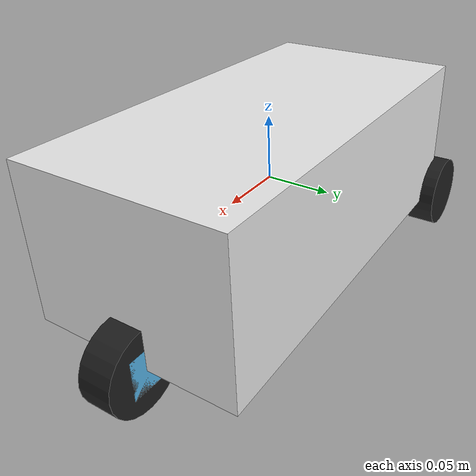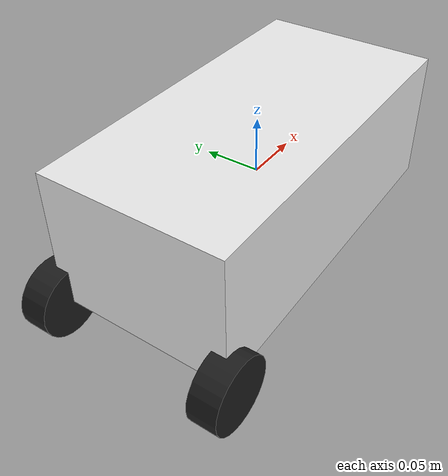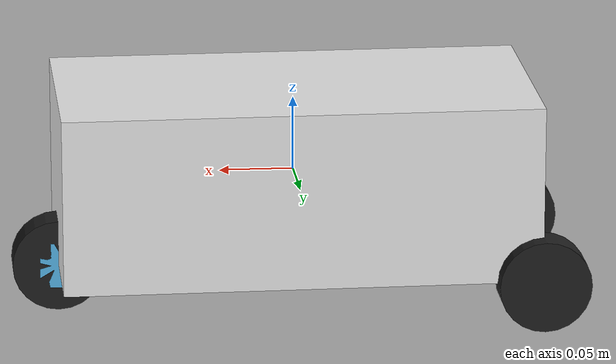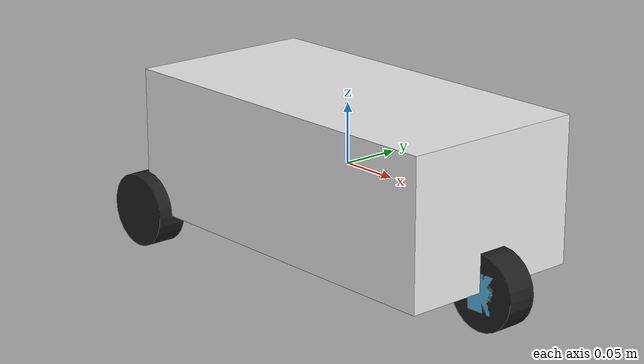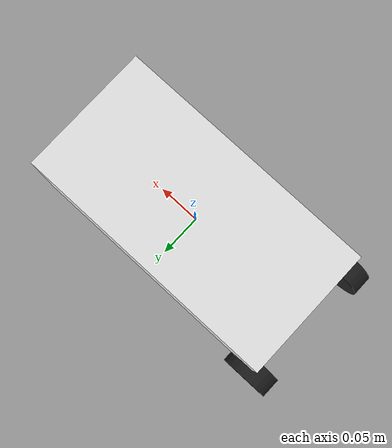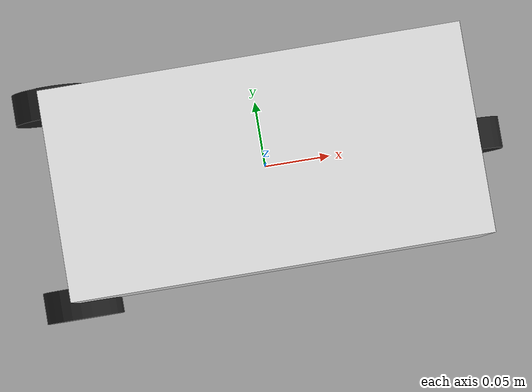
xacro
<?xml version="1.0"?>
<robot xmlns:xacro="http://www.ros.org/wiki/xacro" name="f1tenth">

  <xacro:include filename="gazebo.xacro"/>
  <xacro:include filename="inertial_macros.xacro"/>

  <!-- Chassis Link -->
  <link name="chassis">
    <visual>
      <geometry>
        <box size="0.32 0.16 0.12"/>
      </geometry>
    </visual>
    <collision>
      <geometry>
        <box size="0.32 0.16 0.12"/>
      </geometry>
    </collision>
    <xacro:inertial_box mass="1.98" x="0.32" y="0.16" z="0.12">
      <origin xyz="0.0 0.0 0.0" rpy="0 0 0"/>
    </xacro:inertial_box>
  </link>

  <!-- Steer Link -->
  <link name="steer_link">
    <visual>
      <geometry>
        <box size="0.025 0.025 0.031"/>
      </geometry>
    </visual>
    <collision>
      <geometry>
        <box size="0.025 0.025 0.031"/>
      </geometry>
    </collision>
    <xacro:inertial_box mass="0.02" x="0.025" y="0.025" z="0.031">
      <origin xyz="0.0 0.0 -0.0155" rpy="0 0 0"/>
    </xacro:inertial_box>
  </link>

  <!-- Steer Joint (connects chassis to steer_link) -->
  <joint name="steer_joint" type="revolute">
    <parent link="chassis"/>
    <child link="steer_link"/>
    <origin xyz="0.16 0.0 -0.06" rpy="0 0 0"/>
    <axis xyz="0 0 1"/>
    <limit lower="-0.698" upper="0.698" effort="10.0" velocity="3.0"/>
  </joint>

  <!-- Front Wheel -->
  <link name="front_wheel">
    <visual>
      <origin xyz="0 0 0" rpy="${pi/2} 0 0"/>
      <geometry>
        <cylinder radius="0.031" length="0.025"/>
      </geometry>
    </visual>
    <collision>
      <origin xyz="0 0 0" rpy="${pi/2} 0 0"/>
      <geometry>
        <cylinder radius="0.031" length="0.025"/>
      </geometry>
    </collision>
    <xacro:inertial_cylinder mass="0.02" length="0.025" radius="0.031">
      <origin xyz="0.0 0.0 0.0" rpy="0 0 0"/>
    </xacro:inertial_cylinder>
  </link>

  <!-- Front Wheel Joint (connects steer_link to front_wheel) -->
  <joint name="front_wheel_joint" type="continuous">
    <parent link="steer_link"/>
    <child link="front_wheel"/>
    <origin xyz="0 0 0.0" rpy="0 0 0"/>
    <axis xyz="0 1 0"/>
  </joint>

  <!-- Rear Left Wheel -->
  <link name="rear_left_wheel">
    <visual>
      <origin xyz="0 0 0" rpy="${pi/2} 0 0"/>
      <geometry>
        <cylinder radius="0.031" length="0.025"/>
      </geometry>
    </visual>
    <collision>
      <origin xyz="0 0 0" rpy="${pi/2} 0 0"/>
      <geometry>
        <cylinder radius="0.031" length="0.025"/>
      </geometry>
    </collision>
    <xacro:inertial_cylinder mass="0.02" length="0.025" radius="0.031">
      <origin xyz="0.0 0.0 0.0" rpy="0 0 0"/>
    </xacro:inertial_cylinder>
  </link>

  <!-- Rear Left Wheel Joint -->
  <joint name="rear_left_wheel_joint" type="continuous">
    <parent link="chassis"/>
    <child link="rear_left_wheel"/>
    <origin xyz="-0.16 0.08 -0.06" rpy="0 0 0"/>
    <axis xyz="0 1 0"/>
    <limit effort="10.0" velocity="3.0"/>
  </joint>

  <!-- Rear Right Wheel -->
  <link name="rear_right_wheel">
    <visual>
      <origin xyz="0 0 0" rpy="${pi/2} 0 0"/>
      <geometry>
        <cylinder radius="0.031" length="0.025"/>
      </geometry>
    </visual>
    <collision>
      <origin xyz="0 0 0" rpy="${pi/2} 0 0"/>
      <geometry>
        <cylinder radius="0.031" length="0.025"/>
      </geometry>
    </collision>
    <xacro:inertial_cylinder mass="0.02" length="0.025" radius="0.031">
      <origin xyz="0.0 0.0 0.0" rpy="0 0 0"/>
    </xacro:inertial_cylinder>
  </link>

  <!-- Rear Right Wheel Joint -->
  <joint name="rear_right_wheel_joint" type="continuous">
    <parent link="chassis"/>
    <child link="rear_right_wheel"/>
    <origin xyz="-0.16 -0.08 -0.06" rpy="0 0 0"/>
    <axis xyz="0 1 0"/>
    <limit effort="10.0" velocity="3.0"/>
  </joint>

</robot>
